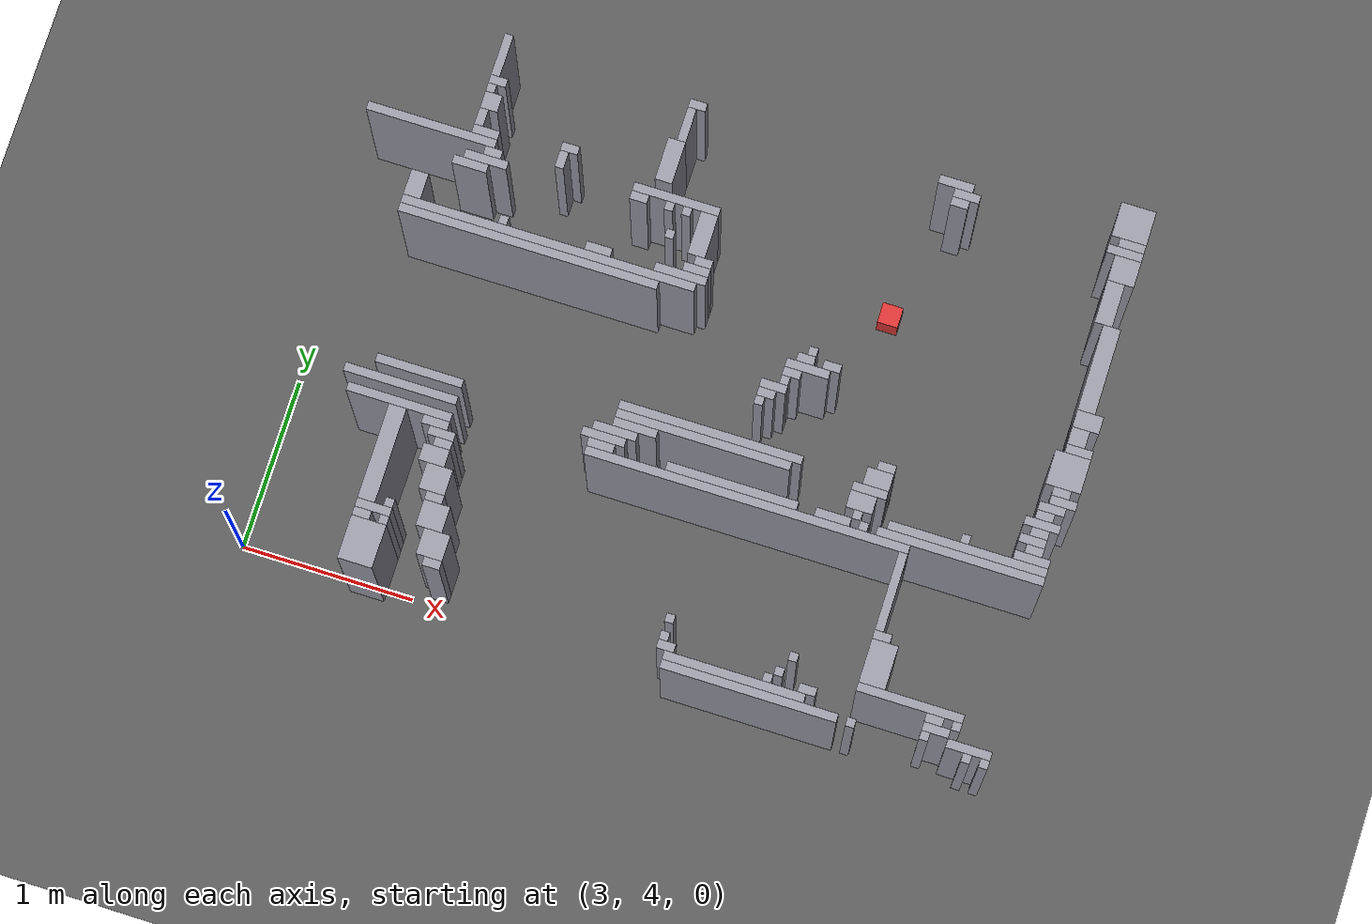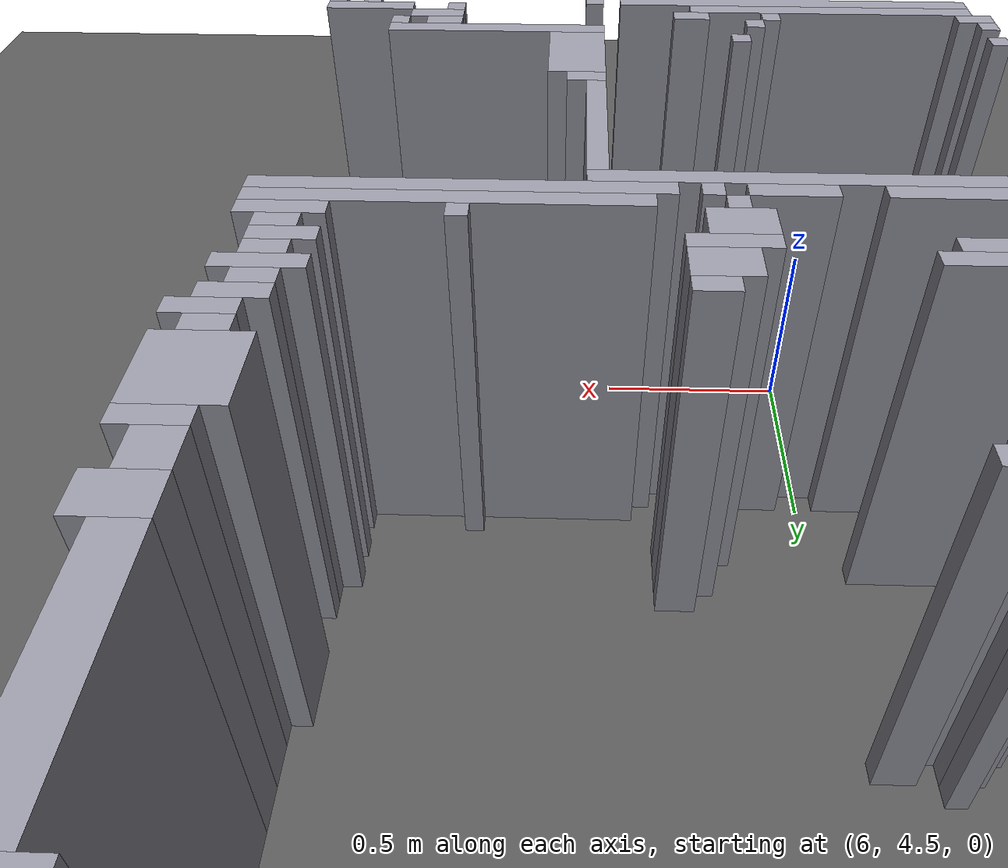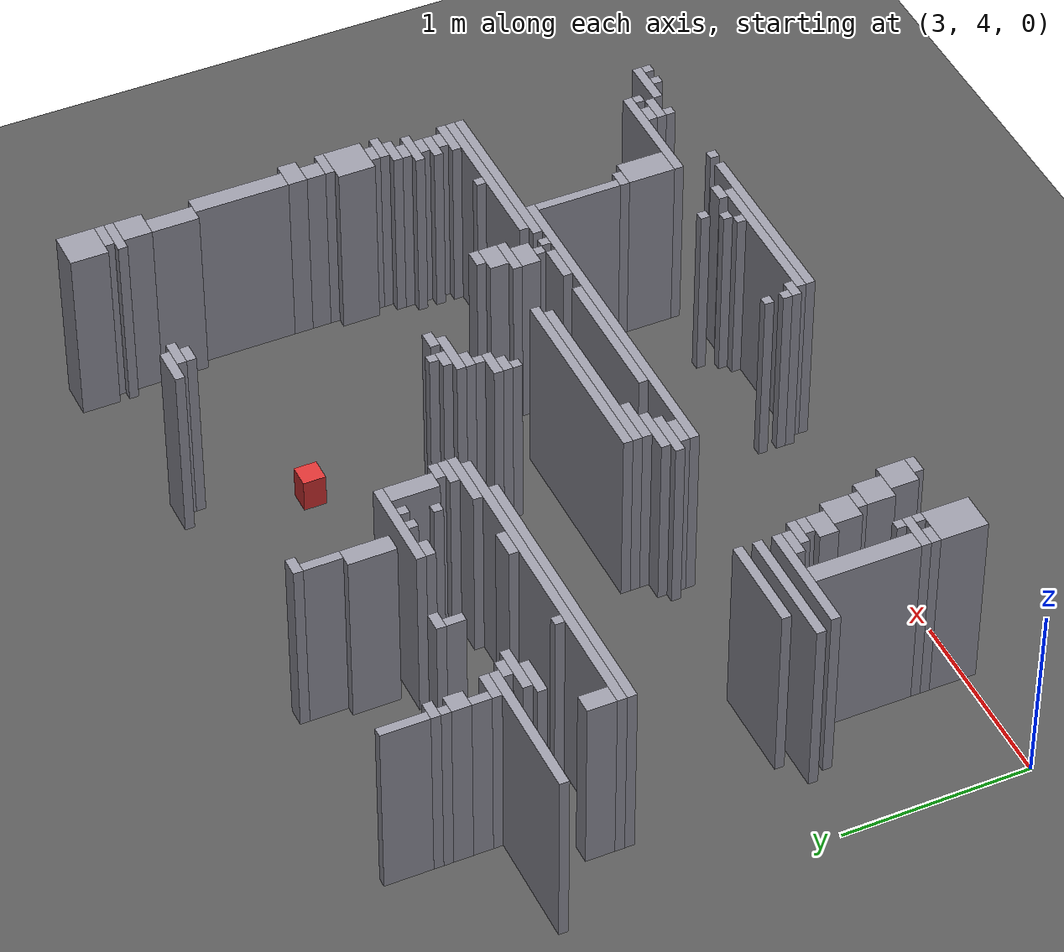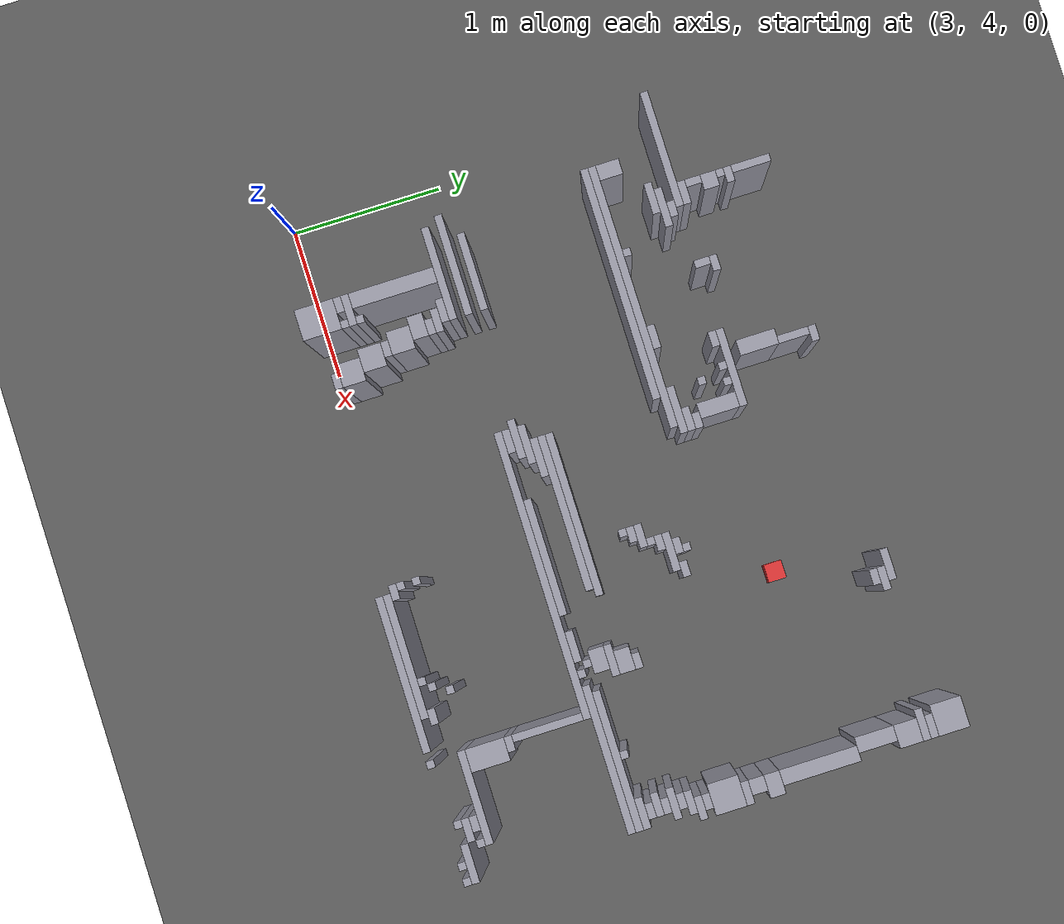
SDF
<sdf version="1.8">
 <world name="dimi">
  <model name="ground">
   <static>true</static>
   <link name="ground_link">
    <collision name="c"><geometry><plane><normal>0 0 1</normal><size>60 60</size></plane></geometry></collision>
    <visual name="v">
     <geometry><plane><normal>0 0 1</normal><size>60 60</size></plane></geometry>
     <material><ambient>0.3 0.3 0.3 1</ambient><diffuse>0.35 0.35 0.35 1</diffuse></material>
    </visual>
   </link>
  </model>
  <model name="walls">
   <static>true</static>
   <link name="wall_251">
    <pose>7.2530 7.0420 0.5000 0 0 0</pose>
    <collision name="c"><geometry><box><size>0.2000 0.2000 1.0000</size></box></geometry></collision>
    <visual name="v">
     <geometry><box><size>0.2000 0.2000 1.0000</size></box></geometry>
     <material><ambient>0.5 0.5 0.55 1</ambient><diffuse>0.6 0.6 0.65 1</diffuse></material>
    </visual>
   </link>
   <link name="wall_256">
    <pose>3.6280 6.9170 0.5000 0 0 0</pose>
    <collision name="c"><geometry><box><size>0.0500 0.2500 1.0000</size></box></geometry></collision>
    <visual name="v">
     <geometry><box><size>0.0500 0.2500 1.0000</size></box></geometry>
     <material><ambient>0.5 0.5 0.55 1</ambient><diffuse>0.6 0.6 0.65 1</diffuse></material>
    </visual>
   </link>
   <link name="wall_258">
    <pose>4.7530 6.9670 0.5000 0 0 0</pose>
    <collision name="c"><geometry><box><size>0.1000 0.0500 1.0000</size></box></geometry></collision>
    <visual name="v">
     <geometry><box><size>0.1000 0.0500 1.0000</size></box></geometry>
     <material><ambient>0.5 0.5 0.55 1</ambient><diffuse>0.6 0.6 0.65 1</diffuse></material>
    </visual>
   </link>
   <link name="wall_259">
    <pose>6.2530 6.9670 0.5000 0 0 0</pose>
    <collision name="c"><geometry><box><size>0.2000 0.0500 1.0000</size></box></geometry></collision>
    <visual name="v">
     <geometry><box><size>0.2000 0.0500 1.0000</size></box></geometry>
     <material><ambient>0.5 0.5 0.55 1</ambient><diffuse>0.6 0.6 0.65 1</diffuse></material>
    </visual>
   </link>
   <link name="wall_262">
    <pose>4.7280 6.8420 0.5000 0 0 0</pose>
    <collision name="c"><geometry><box><size>0.0500 0.2000 1.0000</size></box></geometry></collision>
    <visual name="v">
     <geometry><box><size>0.0500 0.2000 1.0000</size></box></geometry>
     <material><ambient>0.5 0.5 0.55 1</ambient><diffuse>0.6 0.6 0.65 1</diffuse></material>
    </visual>
   </link>
   <link name="wall_263">
    <pose>6.3280 6.9170 0.5000 0 0 0</pose>
    <collision name="c"><geometry><box><size>0.1500 0.0500 1.0000</size></box></geometry></collision>
    <visual name="v">
     <geometry><box><size>0.1500 0.0500 1.0000</size></box></geometry>
     <material><ambient>0.5 0.5 0.55 1</ambient><diffuse>0.6 0.6 0.65 1</diffuse></material>
    </visual>
   </link>
   <link name="wall_264">
    <pose>7.2780 6.9170 0.5000 0 0 0</pose>
    <collision name="c"><geometry><box><size>0.1500 0.0500 1.0000</size></box></geometry></collision>
    <visual name="v">
     <geometry><box><size>0.1500 0.0500 1.0000</size></box></geometry>
     <material><ambient>0.5 0.5 0.55 1</ambient><diffuse>0.6 0.6 0.65 1</diffuse></material>
    </visual>
   </link>
   <link name="wall_267">
    <pose>6.3030 6.8670 0.5000 0 0 0</pose>
    <collision name="c"><geometry><box><size>0.1000 0.0500 1.0000</size></box></geometry></collision>
    <visual name="v">
     <geometry><box><size>0.1000 0.0500 1.0000</size></box></geometry>
     <material><ambient>0.5 0.5 0.55 1</ambient><diffuse>0.6 0.6 0.65 1</diffuse></material>
    </visual>
   </link>
   <link name="wall_268">
    <pose>7.2530 6.8670 0.5000 0 0 0</pose>
    <collision name="c"><geometry><box><size>0.2000 0.0500 1.0000</size></box></geometry></collision>
    <visual name="v">
     <geometry><box><size>0.2000 0.0500 1.0000</size></box></geometry>
     <material><ambient>0.5 0.5 0.55 1</ambient><diffuse>0.6 0.6 0.65 1</diffuse></material>
    </visual>
   </link>
   <link name="wall_270">
    <pose>7.2780 6.7670 0.5000 0 0 0</pose>
    <collision name="c"><geometry><box><size>0.1500 0.1500 1.0000</size></box></geometry></collision>
    <visual name="v">
     <geometry><box><size>0.1500 0.1500 1.0000</size></box></geometry>
     <material><ambient>0.5 0.5 0.55 1</ambient><diffuse>0.6 0.6 0.65 1</diffuse></material>
    </visual>
   </link>
   <link name="wall_271">
    <pose>3.6530 6.7670 0.5000 0 0 0</pose>
    <collision name="c"><geometry><box><size>0.1000 0.0500 1.0000</size></box></geometry></collision>
    <visual name="v">
     <geometry><box><size>0.1000 0.0500 1.0000</size></box></geometry>
     <material><ambient>0.5 0.5 0.55 1</ambient><diffuse>0.6 0.6 0.65 1</diffuse></material>
    </visual>
   </link>
   <link name="wall_273">
    <pose>3.6280 6.7170 0.5000 0 0 0</pose>
    <collision name="c"><geometry><box><size>0.0500 0.0500 1.0000</size></box></geometry></collision>
    <visual name="v">
     <geometry><box><size>0.0500 0.0500 1.0000</size></box></geometry>
     <material><ambient>0.5 0.5 0.55 1</ambient><diffuse>0.6 0.6 0.65 1</diffuse></material>
    </visual>
   </link>
   <link name="wall_274">
    <pose>4.7030 6.6170 0.5000 0 0 0</pose>
    <collision name="c"><geometry><box><size>0.1000 0.2500 1.0000</size></box></geometry></collision>
    <visual name="v">
     <geometry><box><size>0.1000 0.2500 1.0000</size></box></geometry>
     <material><ambient>0.5 0.5 0.55 1</ambient><diffuse>0.6 0.6 0.65 1</diffuse></material>
    </visual>
   </link>
   <link name="wall_277">
    <pose>3.6530 6.6420 0.5000 0 0 0</pose>
    <collision name="c"><geometry><box><size>0.1000 0.1000 1.0000</size></box></geometry></collision>
    <visual name="v">
     <geometry><box><size>0.1000 0.1000 1.0000</size></box></geometry>
     <material><ambient>0.5 0.5 0.55 1</ambient><diffuse>0.6 0.6 0.65 1</diffuse></material>
    </visual>
   </link>
   <link name="wall_278">
    <pose>7.2530 6.5670 0.5000 0 0 0</pose>
    <collision name="c"><geometry><box><size>0.1000 0.2500 1.0000</size></box></geometry></collision>
    <visual name="v">
     <geometry><box><size>0.1000 0.2500 1.0000</size></box></geometry>
     <material><ambient>0.5 0.5 0.55 1</ambient><diffuse>0.6 0.6 0.65 1</diffuse></material>
    </visual>
   </link>
   <link name="wall_288">
    <pose>3.6280 6.5420 0.5000 0 0 0</pose>
    <collision name="c"><geometry><box><size>0.0500 0.1000 1.0000</size></box></geometry></collision>
    <visual name="v">
     <geometry><box><size>0.0500 0.1000 1.0000</size></box></geometry>
     <material><ambient>0.5 0.5 0.55 1</ambient><diffuse>0.6 0.6 0.65 1</diffuse></material>
    </visual>
   </link>
   <link name="wall_294">
    <pose>4.1530 6.5170 0.5000 0 0 0</pose>
    <collision name="c"><geometry><box><size>0.1000 0.0500 1.0000</size></box></geometry></collision>
    <visual name="v">
     <geometry><box><size>0.1000 0.0500 1.0000</size></box></geometry>
     <material><ambient>0.5 0.5 0.55 1</ambient><diffuse>0.6 0.6 0.65 1</diffuse></material>
    </visual>
   </link>
   <link name="wall_300">
    <pose>3.6780 6.4670 0.5000 0 0 0</pose>
    <collision name="c"><geometry><box><size>0.1500 0.0500 1.0000</size></box></geometry></collision>
    <visual name="v">
     <geometry><box><size>0.1500 0.0500 1.0000</size></box></geometry>
     <material><ambient>0.5 0.5 0.55 1</ambient><diffuse>0.6 0.6 0.65 1</diffuse></material>
    </visual>
   </link>
   <link name="wall_301">
    <pose>4.1280 6.4420 0.5000 0 0 0</pose>
    <collision name="c"><geometry><box><size>0.0500 0.1000 1.0000</size></box></geometry></collision>
    <visual name="v">
     <geometry><box><size>0.0500 0.1000 1.0000</size></box></geometry>
     <material><ambient>0.5 0.5 0.55 1</ambient><diffuse>0.6 0.6 0.65 1</diffuse></material>
    </visual>
   </link>
   <link name="wall_306">
    <pose>3.3780 6.4170 0.5000 0 0 0</pose>
    <collision name="c"><geometry><box><size>0.7500 0.0500 1.0000</size></box></geometry></collision>
    <visual name="v">
     <geometry><box><size>0.7500 0.0500 1.0000</size></box></geometry>
     <material><ambient>0.5 0.5 0.55 1</ambient><diffuse>0.6 0.6 0.65 1</diffuse></material>
    </visual>
   </link>
   <link name="wall_307">
    <pose>4.8030 6.4170 0.5000 0 0 0</pose>
    <collision name="c"><geometry><box><size>0.5000 0.0500 1.0000</size></box></geometry></collision>
    <visual name="v">
     <geometry><box><size>0.5000 0.0500 1.0000</size></box></geometry>
     <material><ambient>0.5 0.5 0.55 1</ambient><diffuse>0.6 0.6 0.65 1</diffuse></material>
    </visual>
   </link>
   <link name="wall_308">
    <pose>7.3030 6.1920 0.5000 0 0 0</pose>
    <collision name="c"><geometry><box><size>0.1000 0.5000 1.0000</size></box></geometry></collision>
    <visual name="v">
     <geometry><box><size>0.1000 0.5000 1.0000</size></box></geometry>
     <material><ambient>0.5 0.5 0.55 1</ambient><diffuse>0.6 0.6 0.65 1</diffuse></material>
    </visual>
   </link>
   <link name="wall_314">
    <pose>3.7530 6.3670 0.5000 0 0 0</pose>
    <collision name="c"><geometry><box><size>0.1000 0.0500 1.0000</size></box></geometry></collision>
    <visual name="v">
     <geometry><box><size>0.1000 0.0500 1.0000</size></box></geometry>
     <material><ambient>0.5 0.5 0.55 1</ambient><diffuse>0.6 0.6 0.65 1</diffuse></material>
    </visual>
   </link>
   <link name="wall_315">
    <pose>4.6030 6.3670 0.5000 0 0 0</pose>
    <collision name="c"><geometry><box><size>0.1000 0.0500 1.0000</size></box></geometry></collision>
    <visual name="v">
     <geometry><box><size>0.1000 0.0500 1.0000</size></box></geometry>
     <material><ambient>0.5 0.5 0.55 1</ambient><diffuse>0.6 0.6 0.65 1</diffuse></material>
    </visual>
   </link>
   <link name="wall_316">
    <pose>4.7780 6.3670 0.5000 0 0 0</pose>
    <collision name="c"><geometry><box><size>0.0500 0.0500 1.0000</size></box></geometry></collision>
    <visual name="v">
     <geometry><box><size>0.0500 0.0500 1.0000</size></box></geometry>
     <material><ambient>0.5 0.5 0.55 1</ambient><diffuse>0.6 0.6 0.65 1</diffuse></material>
    </visual>
   </link>
   <link name="wall_317">
    <pose>4.8780 6.3670 0.5000 0 0 0</pose>
    <collision name="c"><geometry><box><size>0.0500 0.0500 1.0000</size></box></geometry></collision>
    <visual name="v">
     <geometry><box><size>0.0500 0.0500 1.0000</size></box></geometry>
     <material><ambient>0.5 0.5 0.55 1</ambient><diffuse>0.6 0.6 0.65 1</diffuse></material>
    </visual>
   </link>
   <link name="wall_318">
    <pose>5.0030 6.2670 0.5000 0 0 0</pose>
    <collision name="c"><geometry><box><size>0.1000 0.2500 1.0000</size></box></geometry></collision>
    <visual name="v">
     <geometry><box><size>0.1000 0.2500 1.0000</size></box></geometry>
     <material><ambient>0.5 0.5 0.55 1</ambient><diffuse>0.6 0.6 0.65 1</diffuse></material>
    </visual>
   </link>
   <link name="wall_325">
    <pose>3.7280 6.3170 0.5000 0 0 0</pose>
    <collision name="c"><geometry><box><size>0.2500 0.0500 1.0000</size></box></geometry></collision>
    <visual name="v">
     <geometry><box><size>0.2500 0.0500 1.0000</size></box></geometry>
     <material><ambient>0.5 0.5 0.55 1</ambient><diffuse>0.6 0.6 0.65 1</diffuse></material>
    </visual>
   </link>
   <link name="wall_329">
    <pose>3.6530 6.2670 0.5000 0 0 0</pose>
    <collision name="c"><geometry><box><size>0.2000 0.0500 1.0000</size></box></geometry></collision>
    <visual name="v">
     <geometry><box><size>0.2000 0.0500 1.0000</size></box></geometry>
     <material><ambient>0.5 0.5 0.55 1</ambient><diffuse>0.6 0.6 0.65 1</diffuse></material>
    </visual>
   </link>
   <link name="wall_332">
    <pose>4.8280 6.2170 0.5000 0 0 0</pose>
    <collision name="c"><geometry><box><size>0.0500 0.0500 1.0000</size></box></geometry></collision>
    <visual name="v">
     <geometry><box><size>0.0500 0.0500 1.0000</size></box></geometry>
     <material><ambient>0.5 0.5 0.55 1</ambient><diffuse>0.6 0.6 0.65 1</diffuse></material>
    </visual>
   </link>
   <link name="wall_334">
    <pose>3.4030 6.0670 0.5000 0 0 0</pose>
    <collision name="c"><geometry><box><size>0.1000 0.1500 1.0000</size></box></geometry></collision>
    <visual name="v">
     <geometry><box><size>0.1000 0.1500 1.0000</size></box></geometry>
     <material><ambient>0.5 0.5 0.55 1</ambient><diffuse>0.6 0.6 0.65 1</diffuse></material>
    </visual>
   </link>
   <link name="wall_335">
    <pose>5.0530 6.1170 0.5000 0 0 0</pose>
    <collision name="c"><geometry><box><size>0.1000 0.0500 1.0000</size></box></geometry></collision>
    <visual name="v">
     <geometry><box><size>0.1000 0.0500 1.0000</size></box></geometry>
     <material><ambient>0.5 0.5 0.55 1</ambient><diffuse>0.6 0.6 0.65 1</diffuse></material>
    </visual>
   </link>
   <link name="wall_336">
    <pose>5.0280 6.0670 0.5000 0 0 0</pose>
    <collision name="c"><geometry><box><size>0.1500 0.0500 1.0000</size></box></geometry></collision>
    <visual name="v">
     <geometry><box><size>0.1500 0.0500 1.0000</size></box></geometry>
     <material><ambient>0.5 0.5 0.55 1</ambient><diffuse>0.6 0.6 0.65 1</diffuse></material>
    </visual>
   </link>
   <link name="wall_337">
    <pose>3.9280 6.0170 0.5000 0 0 0</pose>
    <collision name="c"><geometry><box><size>0.0500 0.0500 1.0000</size></box></geometry></collision>
    <visual name="v">
     <geometry><box><size>0.0500 0.0500 1.0000</size></box></geometry>
     <material><ambient>0.5 0.5 0.55 1</ambient><diffuse>0.6 0.6 0.65 1</diffuse></material>
    </visual>
   </link>
   <link name="wall_338">
    <pose>4.4780 6.0170 0.5000 0 0 0</pose>
    <collision name="c"><geometry><box><size>0.1500 0.0500 1.0000</size></box></geometry></collision>
    <visual name="v">
     <geometry><box><size>0.1500 0.0500 1.0000</size></box></geometry>
     <material><ambient>0.5 0.5 0.55 1</ambient><diffuse>0.6 0.6 0.65 1</diffuse></material>
    </visual>
   </link>
   <link name="wall_339">
    <pose>4.9530 6.0170 0.5000 0 0 0</pose>
    <collision name="c"><geometry><box><size>0.3000 0.0500 1.0000</size></box></geometry></collision>
    <visual name="v">
     <geometry><box><size>0.3000 0.0500 1.0000</size></box></geometry>
     <material><ambient>0.5 0.5 0.55 1</ambient><diffuse>0.6 0.6 0.65 1</diffuse></material>
    </visual>
   </link>
   <link name="wall_340">
    <pose>4.2030 5.9670 0.5000 0 0 0</pose>
    <collision name="c"><geometry><box><size>1.7000 0.0500 1.0000</size></box></geometry></collision>
    <visual name="v">
     <geometry><box><size>1.7000 0.0500 1.0000</size></box></geometry>
     <material><ambient>0.5 0.5 0.55 1</ambient><diffuse>0.6 0.6 0.65 1</diffuse></material>
    </visual>
   </link>
   <link name="wall_341">
    <pose>4.1030 5.9170 0.5000 0 0 0</pose>
    <collision name="c"><geometry><box><size>1.5000 0.0500 1.0000</size></box></geometry></collision>
    <visual name="v">
     <geometry><box><size>1.5000 0.0500 1.0000</size></box></geometry>
     <material><ambient>0.5 0.5 0.55 1</ambient><diffuse>0.6 0.6 0.65 1</diffuse></material>
    </visual>
   </link>
   <link name="wall_342">
    <pose>7.3280 5.8920 0.5000 0 0 0</pose>
    <collision name="c"><geometry><box><size>0.1500 0.1000 1.0000</size></box></geometry></collision>
    <visual name="v">
     <geometry><box><size>0.1500 0.1000 1.0000</size></box></geometry>
     <material><ambient>0.5 0.5 0.55 1</ambient><diffuse>0.6 0.6 0.65 1</diffuse></material>
    </visual>
   </link>
   <link name="wall_344">
    <pose>5.7780 5.8170 0.5000 0 0 0</pose>
    <collision name="c"><geometry><box><size>0.0500 0.0500 1.0000</size></box></geometry></collision>
    <visual name="v">
     <geometry><box><size>0.0500 0.0500 1.0000</size></box></geometry>
     <material><ambient>0.5 0.5 0.55 1</ambient><diffuse>0.6 0.6 0.65 1</diffuse></material>
    </visual>
   </link>
   <link name="wall_345">
    <pose>7.3030 5.7920 0.5000 0 0 0</pose>
    <collision name="c"><geometry><box><size>0.1000 0.1000 1.0000</size></box></geometry></collision>
    <visual name="v">
     <geometry><box><size>0.1000 0.1000 1.0000</size></box></geometry>
     <material><ambient>0.5 0.5 0.55 1</ambient><diffuse>0.6 0.6 0.65 1</diffuse></material>
    </visual>
   </link>
   <link name="wall_346">
    <pose>5.7530 5.7670 0.5000 0 0 0</pose>
    <collision name="c"><geometry><box><size>0.1000 0.0500 1.0000</size></box></geometry></collision>
    <visual name="v">
     <geometry><box><size>0.1000 0.0500 1.0000</size></box></geometry>
     <material><ambient>0.5 0.5 0.55 1</ambient><diffuse>0.6 0.6 0.65 1</diffuse></material>
    </visual>
   </link>
   <link name="wall_347">
    <pose>5.9030 5.7670 0.5000 0 0 0</pose>
    <collision name="c"><geometry><box><size>0.1000 0.0500 1.0000</size></box></geometry></collision>
    <visual name="v">
     <geometry><box><size>0.1000 0.0500 1.0000</size></box></geometry>
     <material><ambient>0.5 0.5 0.55 1</ambient><diffuse>0.6 0.6 0.65 1</diffuse></material>
    </visual>
   </link>
   <link name="wall_348">
    <pose>5.7780 5.7170 0.5000 0 0 0</pose>
    <collision name="c"><geometry><box><size>0.2500 0.0500 1.0000</size></box></geometry></collision>
    <visual name="v">
     <geometry><box><size>0.2500 0.0500 1.0000</size></box></geometry>
     <material><ambient>0.5 0.5 0.55 1</ambient><diffuse>0.6 0.6 0.65 1</diffuse></material>
    </visual>
   </link>
   <link name="wall_349">
    <pose>7.3280 5.7170 0.5000 0 0 0</pose>
    <collision name="c"><geometry><box><size>0.1500 0.0500 1.0000</size></box></geometry></collision>
    <visual name="v">
     <geometry><box><size>0.1500 0.0500 1.0000</size></box></geometry>
     <material><ambient>0.5 0.5 0.55 1</ambient><diffuse>0.6 0.6 0.65 1</diffuse></material>
    </visual>
   </link>
   <link name="wall_350">
    <pose>5.7030 5.6670 0.5000 0 0 0</pose>
    <collision name="c"><geometry><box><size>0.1000 0.0500 1.0000</size></box></geometry></collision>
    <visual name="v">
     <geometry><box><size>0.1000 0.0500 1.0000</size></box></geometry>
     <material><ambient>0.5 0.5 0.55 1</ambient><diffuse>0.6 0.6 0.65 1</diffuse></material>
    </visual>
   </link>
   <link name="wall_351">
    <pose>7.3030 5.5920 0.5000 0 0 0</pose>
    <collision name="c"><geometry><box><size>0.2000 0.2000 1.0000</size></box></geometry></collision>
    <visual name="v">
     <geometry><box><size>0.2000 0.2000 1.0000</size></box></geometry>
     <material><ambient>0.5 0.5 0.55 1</ambient><diffuse>0.6 0.6 0.65 1</diffuse></material>
    </visual>
   </link>
   <link name="wall_352">
    <pose>5.6780 5.6170 0.5000 0 0 0</pose>
    <collision name="c"><geometry><box><size>0.0500 0.0500 1.0000</size></box></geometry></collision>
    <visual name="v">
     <geometry><box><size>0.0500 0.0500 1.0000</size></box></geometry>
     <material><ambient>0.5 0.5 0.55 1</ambient><diffuse>0.6 0.6 0.65 1</diffuse></material>
    </visual>
   </link>
   <link name="wall_353">
    <pose>5.6280 5.5670 0.5000 0 0 0</pose>
    <collision name="c"><geometry><box><size>0.1500 0.0500 1.0000</size></box></geometry></collision>
    <visual name="v">
     <geometry><box><size>0.1500 0.0500 1.0000</size></box></geometry>
     <material><ambient>0.5 0.5 0.55 1</ambient><diffuse>0.6 0.6 0.65 1</diffuse></material>
    </visual>
   </link>
   <link name="wall_354">
    <pose>5.6030 5.5170 0.5000 0 0 0</pose>
    <collision name="c"><geometry><box><size>0.1000 0.0500 1.0000</size></box></geometry></collision>
    <visual name="v">
     <geometry><box><size>0.1000 0.0500 1.0000</size></box></geometry>
     <material><ambient>0.5 0.5 0.55 1</ambient><diffuse>0.6 0.6 0.65 1</diffuse></material>
    </visual>
   </link>
   <link name="wall_355">
    <pose>5.5780 5.4670 0.5000 0 0 0</pose>
    <collision name="c"><geometry><box><size>0.0500 0.0500 1.0000</size></box></geometry></collision>
    <visual name="v">
     <geometry><box><size>0.0500 0.0500 1.0000</size></box></geometry>
     <material><ambient>0.5 0.5 0.55 1</ambient><diffuse>0.6 0.6 0.65 1</diffuse></material>
    </visual>
   </link>
   <link name="wall_356">
    <pose>7.3030 5.4670 0.5000 0 0 0</pose>
    <collision name="c"><geometry><box><size>0.1000 0.0500 1.0000</size></box></geometry></collision>
    <visual name="v">
     <geometry><box><size>0.1000 0.0500 1.0000</size></box></geometry>
     <material><ambient>0.5 0.5 0.55 1</ambient><diffuse>0.6 0.6 0.65 1</diffuse></material>
    </visual>
   </link>
   <link name="wall_357">
    <pose>7.3280 5.4170 0.5000 0 0 0</pose>
    <collision name="c"><geometry><box><size>0.1500 0.0500 1.0000</size></box></geometry></collision>
    <visual name="v">
     <geometry><box><size>0.1500 0.0500 1.0000</size></box></geometry>
     <material><ambient>0.5 0.5 0.55 1</ambient><diffuse>0.6 0.6 0.65 1</diffuse></material>
    </visual>
   </link>
   <link name="wall_358">
    <pose>7.2780 5.3670 0.5000 0 0 0</pose>
    <collision name="c"><geometry><box><size>0.1500 0.0500 1.0000</size></box></geometry></collision>
    <visual name="v">
     <geometry><box><size>0.1500 0.0500 1.0000</size></box></geometry>
     <material><ambient>0.5 0.5 0.55 1</ambient><diffuse>0.6 0.6 0.65 1</diffuse></material>
    </visual>
   </link>
   <link name="wall_359">
    <pose>6.3530 5.3170 0.5000 0 0 0</pose>
    <collision name="c"><geometry><box><size>0.1000 0.0500 1.0000</size></box></geometry></collision>
    <visual name="v">
     <geometry><box><size>0.1000 0.0500 1.0000</size></box></geometry>
     <material><ambient>0.5 0.5 0.55 1</ambient><diffuse>0.6 0.6 0.65 1</diffuse></material>
    </visual>
   </link>
   <link name="wall_360">
    <pose>7.2530 5.3170 0.5000 0 0 0</pose>
    <collision name="c"><geometry><box><size>0.1000 0.0500 1.0000</size></box></geometry></collision>
    <visual name="v">
     <geometry><box><size>0.1000 0.0500 1.0000</size></box></geometry>
     <material><ambient>0.5 0.5 0.55 1</ambient><diffuse>0.6 0.6 0.65 1</diffuse></material>
    </visual>
   </link>
   <link name="wall_361">
    <pose>6.3280 5.2420 0.5000 0 0 0</pose>
    <collision name="c"><geometry><box><size>0.1500 0.1000 1.0000</size></box></geometry></collision>
    <visual name="v">
     <geometry><box><size>0.1500 0.1000 1.0000</size></box></geometry>
     <material><ambient>0.5 0.5 0.55 1</ambient><diffuse>0.6 0.6 0.65 1</diffuse></material>
    </visual>
   </link>
   <link name="wall_362">
    <pose>7.2530 5.2670 0.5000 0 0 0</pose>
    <collision name="c"><geometry><box><size>0.2000 0.0500 1.0000</size></box></geometry></collision>
    <visual name="v">
     <geometry><box><size>0.2000 0.0500 1.0000</size></box></geometry>
     <material><ambient>0.5 0.5 0.55 1</ambient><diffuse>0.6 0.6 0.65 1</diffuse></material>
    </visual>
   </link>
   <link name="wall_366">
    <pose>5.3780 5.2170 0.5000 0 0 0</pose>
    <collision name="c"><geometry><box><size>1.0500 0.0500 1.0000</size></box></geometry></collision>
    <visual name="v">
     <geometry><box><size>1.0500 0.0500 1.0000</size></box></geometry>
     <material><ambient>0.5 0.5 0.55 1</ambient><diffuse>0.6 0.6 0.65 1</diffuse></material>
    </visual>
   </link>
   <link name="wall_367">
    <pose>7.2530 5.2170 0.5000 0 0 0</pose>
    <collision name="c"><geometry><box><size>0.1000 0.0500 1.0000</size></box></geometry></collision>
    <visual name="v">
     <geometry><box><size>0.1000 0.0500 1.0000</size></box></geometry>
     <material><ambient>0.5 0.5 0.55 1</ambient><diffuse>0.6 0.6 0.65 1</diffuse></material>
    </visual>
   </link>
   <link name="wall_369">
    <pose>5.3530 5.1670 0.5000 0 0 0</pose>
    <collision name="c"><geometry><box><size>1.0000 0.0500 1.0000</size></box></geometry></collision>
    <visual name="v">
     <geometry><box><size>1.0000 0.0500 1.0000</size></box></geometry>
     <material><ambient>0.5 0.5 0.55 1</ambient><diffuse>0.6 0.6 0.65 1</diffuse></material>
    </visual>
   </link>
   <link name="wall_370">
    <pose>6.3030 5.1670 0.5000 0 0 0</pose>
    <collision name="c"><geometry><box><size>0.2000 0.0500 1.0000</size></box></geometry></collision>
    <visual name="v">
     <geometry><box><size>0.2000 0.0500 1.0000</size></box></geometry>
     <material><ambient>0.5 0.5 0.55 1</ambient><diffuse>0.6 0.6 0.65 1</diffuse></material>
    </visual>
   </link>
   <link name="wall_371">
    <pose>7.2280 5.1670 0.5000 0 0 0</pose>
    <collision name="c"><geometry><box><size>0.1500 0.0500 1.0000</size></box></geometry></collision>
    <visual name="v">
     <geometry><box><size>0.1500 0.0500 1.0000</size></box></geometry>
     <material><ambient>0.5 0.5 0.55 1</ambient><diffuse>0.6 0.6 0.65 1</diffuse></material>
    </visual>
   </link>
   <link name="wall_372">
    <pose>4.9780 5.1170 0.5000 0 0 0</pose>
    <collision name="c"><geometry><box><size>0.2500 0.0500 1.0000</size></box></geometry></collision>
    <visual name="v">
     <geometry><box><size>0.2500 0.0500 1.0000</size></box></geometry>
     <material><ambient>0.5 0.5 0.55 1</ambient><diffuse>0.6 0.6 0.65 1</diffuse></material>
    </visual>
   </link>
   <link name="wall_373">
    <pose>6.2780 5.0920 0.5000 0 0 0</pose>
    <collision name="c"><geometry><box><size>0.1500 0.1000 1.0000</size></box></geometry></collision>
    <visual name="v">
     <geometry><box><size>0.1500 0.1000 1.0000</size></box></geometry>
     <material><ambient>0.5 0.5 0.55 1</ambient><diffuse>0.6 0.6 0.65 1</diffuse></material>
    </visual>
   </link>
   <link name="wall_374">
    <pose>7.2530 5.1170 0.5000 0 0 0</pose>
    <collision name="c"><geometry><box><size>0.1000 0.0500 1.0000</size></box></geometry></collision>
    <visual name="v">
     <geometry><box><size>0.1000 0.0500 1.0000</size></box></geometry>
     <material><ambient>0.5 0.5 0.55 1</ambient><diffuse>0.6 0.6 0.65 1</diffuse></material>
    </visual>
   </link>
   <link name="wall_375">
    <pose>3.7530 5.0670 0.5000 0 0 0</pose>
    <collision name="c"><geometry><box><size>0.5000 0.0500 1.0000</size></box></geometry></collision>
    <visual name="v">
     <geometry><box><size>0.5000 0.0500 1.0000</size></box></geometry>
     <material><ambient>0.5 0.5 0.55 1</ambient><diffuse>0.6 0.6 0.65 1</diffuse></material>
    </visual>
   </link>
   <link name="wall_376">
    <pose>4.8780 5.0670 0.5000 0 0 0</pose>
    <collision name="c"><geometry><box><size>0.2500 0.0500 1.0000</size></box></geometry></collision>
    <visual name="v">
     <geometry><box><size>0.2500 0.0500 1.0000</size></box></geometry>
     <material><ambient>0.5 0.5 0.55 1</ambient><diffuse>0.6 0.6 0.65 1</diffuse></material>
    </visual>
   </link>
   <link name="wall_377">
    <pose>6.8780 5.0670 0.5000 0 0 0</pose>
    <collision name="c"><geometry><box><size>0.0500 0.0500 1.0000</size></box></geometry></collision>
    <visual name="v">
     <geometry><box><size>0.0500 0.0500 1.0000</size></box></geometry>
     <material><ambient>0.5 0.5 0.55 1</ambient><diffuse>0.6 0.6 0.65 1</diffuse></material>
    </visual>
   </link>
   <link name="wall_378">
    <pose>7.2530 5.0670 0.5000 0 0 0</pose>
    <collision name="c"><geometry><box><size>0.2000 0.0500 1.0000</size></box></geometry></collision>
    <visual name="v">
     <geometry><box><size>0.2000 0.0500 1.0000</size></box></geometry>
     <material><ambient>0.5 0.5 0.55 1</ambient><diffuse>0.6 0.6 0.65 1</diffuse></material>
    </visual>
   </link>
   <link name="wall_381">
    <pose>4.8280 5.0170 0.5000 0 0 0</pose>
    <collision name="c"><geometry><box><size>0.2500 0.0500 1.0000</size></box></geometry></collision>
    <visual name="v">
     <geometry><box><size>0.2500 0.0500 1.0000</size></box></geometry>
     <material><ambient>0.5 0.5 0.55 1</ambient><diffuse>0.6 0.6 0.65 1</diffuse></material>
    </visual>
   </link>
   <link name="wall_382">
    <pose>6.2780 5.0170 0.5000 0 0 0</pose>
    <collision name="c"><geometry><box><size>0.0500 0.0500 1.0000</size></box></geometry></collision>
    <visual name="v">
     <geometry><box><size>0.0500 0.0500 1.0000</size></box></geometry>
     <material><ambient>0.5 0.5 0.55 1</ambient><diffuse>0.6 0.6 0.65 1</diffuse></material>
    </visual>
   </link>
   <link name="wall_383">
    <pose>6.9030 5.0170 0.5000 0 0 0</pose>
    <collision name="c"><geometry><box><size>0.9000 0.0500 1.0000</size></box></geometry></collision>
    <visual name="v">
     <geometry><box><size>0.9000 0.0500 1.0000</size></box></geometry>
     <material><ambient>0.5 0.5 0.55 1</ambient><diffuse>0.6 0.6 0.65 1</diffuse></material>
    </visual>
   </link>
   <link name="wall_389">
    <pose>3.6780 4.9670 0.5000 0 0 0</pose>
    <collision name="c"><geometry><box><size>0.6500 0.0500 1.0000</size></box></geometry></collision>
    <visual name="v">
     <geometry><box><size>0.6500 0.0500 1.0000</size></box></geometry>
     <material><ambient>0.5 0.5 0.55 1</ambient><diffuse>0.6 0.6 0.65 1</diffuse></material>
    </visual>
   </link>
   <link name="wall_390">
    <pose>4.8280 4.9670 0.5000 0 0 0</pose>
    <collision name="c"><geometry><box><size>0.1500 0.0500 1.0000</size></box></geometry></collision>
    <visual name="v">
     <geometry><box><size>0.1500 0.0500 1.0000</size></box></geometry>
     <material><ambient>0.5 0.5 0.55 1</ambient><diffuse>0.6 0.6 0.65 1</diffuse></material>
    </visual>
   </link>
   <link name="wall_391">
    <pose>5.5780 4.9670 0.5000 0 0 0</pose>
    <collision name="c"><geometry><box><size>0.7500 0.0500 1.0000</size></box></geometry></collision>
    <visual name="v">
     <geometry><box><size>0.7500 0.0500 1.0000</size></box></geometry>
     <material><ambient>0.5 0.5 0.55 1</ambient><diffuse>0.6 0.6 0.65 1</diffuse></material>
    </visual>
   </link>
   <link name="wall_392">
    <pose>6.1530 4.9670 0.5000 0 0 0</pose>
    <collision name="c"><geometry><box><size>0.2000 0.0500 1.0000</size></box></geometry></collision>
    <visual name="v">
     <geometry><box><size>0.2000 0.0500 1.0000</size></box></geometry>
     <material><ambient>0.5 0.5 0.55 1</ambient><diffuse>0.6 0.6 0.65 1</diffuse></material>
    </visual>
   </link>
   <link name="wall_393">
    <pose>6.3280 4.9670 0.5000 0 0 0</pose>
    <collision name="c"><geometry><box><size>0.0500 0.0500 1.0000</size></box></geometry></collision>
    <visual name="v">
     <geometry><box><size>0.0500 0.0500 1.0000</size></box></geometry>
     <material><ambient>0.5 0.5 0.55 1</ambient><diffuse>0.6 0.6 0.65 1</diffuse></material>
    </visual>
   </link>
   <link name="wall_394">
    <pose>6.8780 4.9670 0.5000 0 0 0</pose>
    <collision name="c"><geometry><box><size>0.9500 0.0500 1.0000</size></box></geometry></collision>
    <visual name="v">
     <geometry><box><size>0.9500 0.0500 1.0000</size></box></geometry>
     <material><ambient>0.5 0.5 0.55 1</ambient><diffuse>0.6 0.6 0.65 1</diffuse></material>
    </visual>
   </link>
   <link name="wall_400">
    <pose>5.6780 4.9170 0.5000 0 0 0</pose>
    <collision name="c"><geometry><box><size>1.8500 0.0500 1.0000</size></box></geometry></collision>
    <visual name="v">
     <geometry><box><size>1.8500 0.0500 1.0000</size></box></geometry>
     <material><ambient>0.5 0.5 0.55 1</ambient><diffuse>0.6 0.6 0.65 1</diffuse></material>
    </visual>
   </link>
   <link name="wall_406">
    <pose>3.7030 4.8670 0.5000 0 0 0</pose>
    <collision name="c"><geometry><box><size>0.6000 0.0500 1.0000</size></box></geometry></collision>
    <visual name="v">
     <geometry><box><size>0.6000 0.0500 1.0000</size></box></geometry>
     <material><ambient>0.5 0.5 0.55 1</ambient><diffuse>0.6 0.6 0.65 1</diffuse></material>
    </visual>
   </link>
   <link name="wall_407">
    <pose>6.5780 4.6670 0.5000 0 0 0</pose>
    <collision name="c"><geometry><box><size>0.0500 0.4500 1.0000</size></box></geometry></collision>
    <visual name="v">
     <geometry><box><size>0.0500 0.4500 1.0000</size></box></geometry>
     <material><ambient>0.5 0.5 0.55 1</ambient><diffuse>0.6 0.6 0.65 1</diffuse></material>
    </visual>
   </link>
   <link name="wall_412">
    <pose>3.7030 4.5670 0.5000 0 0 0</pose>
    <collision name="c"><geometry><box><size>0.1000 0.5500 1.0000</size></box></geometry></collision>
    <visual name="v">
     <geometry><box><size>0.1000 0.5500 1.0000</size></box></geometry>
     <material><ambient>0.5 0.5 0.55 1</ambient><diffuse>0.6 0.6 0.65 1</diffuse></material>
    </visual>
   </link>
   <link name="wall_413">
    <pose>3.9280 4.8170 0.5000 0 0 0</pose>
    <collision name="c"><geometry><box><size>0.1500 0.0500 1.0000</size></box></geometry></collision>
    <visual name="v">
     <geometry><box><size>0.1500 0.0500 1.0000</size></box></geometry>
     <material><ambient>0.5 0.5 0.55 1</ambient><diffuse>0.6 0.6 0.65 1</diffuse></material>
    </visual>
   </link>
   <link name="wall_418">
    <pose>3.9780 4.7670 0.5000 0 0 0</pose>
    <collision name="c"><geometry><box><size>0.1500 0.0500 1.0000</size></box></geometry></collision>
    <visual name="v">
     <geometry><box><size>0.1500 0.0500 1.0000</size></box></geometry>
     <material><ambient>0.5 0.5 0.55 1</ambient><diffuse>0.6 0.6 0.65 1</diffuse></material>
    </visual>
   </link>
   <link name="wall_420">
    <pose>4.0030 4.7170 0.5000 0 0 0</pose>
    <collision name="c"><geometry><box><size>0.1000 0.0500 1.0000</size></box></geometry></collision>
    <visual name="v">
     <geometry><box><size>0.1000 0.0500 1.0000</size></box></geometry>
     <material><ambient>0.5 0.5 0.55 1</ambient><diffuse>0.6 0.6 0.65 1</diffuse></material>
    </visual>
   </link>
   <link name="wall_424">
    <pose>3.9780 4.6420 0.5000 0 0 0</pose>
    <collision name="c"><geometry><box><size>0.1500 0.1000 1.0000</size></box></geometry></collision>
    <visual name="v">
     <geometry><box><size>0.1500 0.1000 1.0000</size></box></geometry>
     <material><ambient>0.5 0.5 0.55 1</ambient><diffuse>0.6 0.6 0.65 1</diffuse></material>
    </visual>
   </link>
   <link name="wall_429">
    <pose>4.0280 4.5170 0.5000 0 0 0</pose>
    <collision name="c"><geometry><box><size>0.1500 0.1500 1.0000</size></box></geometry></collision>
    <visual name="v">
     <geometry><box><size>0.1500 0.1500 1.0000</size></box></geometry>
     <material><ambient>0.5 0.5 0.55 1</ambient><diffuse>0.6 0.6 0.65 1</diffuse></material>
    </visual>
   </link>
   <link name="wall_431">
    <pose>4.0530 4.4170 0.5000 0 0 0</pose>
    <collision name="c"><geometry><box><size>0.1000 0.0500 1.0000</size></box></geometry></collision>
    <visual name="v">
     <geometry><box><size>0.1000 0.0500 1.0000</size></box></geometry>
     <material><ambient>0.5 0.5 0.55 1</ambient><diffuse>0.6 0.6 0.65 1</diffuse></material>
    </visual>
   </link>
   <link name="wall_432">
    <pose>6.6030 4.4170 0.5000 0 0 0</pose>
    <collision name="c"><geometry><box><size>0.1000 0.0500 1.0000</size></box></geometry></collision>
    <visual name="v">
     <geometry><box><size>0.1000 0.0500 1.0000</size></box></geometry>
     <material><ambient>0.5 0.5 0.55 1</ambient><diffuse>0.6 0.6 0.65 1</diffuse></material>
    </visual>
   </link>
   <link name="wall_434">
    <pose>4.0780 4.3170 0.5000 0 0 0</pose>
    <collision name="c"><geometry><box><size>0.1500 0.1500 1.0000</size></box></geometry></collision>
    <visual name="v">
     <geometry><box><size>0.1500 0.1500 1.0000</size></box></geometry>
     <material><ambient>0.5 0.5 0.55 1</ambient><diffuse>0.6 0.6 0.65 1</diffuse></material>
    </visual>
   </link>
   <link name="wall_435">
    <pose>6.6280 4.2670 0.5000 0 0 0</pose>
    <collision name="c"><geometry><box><size>0.1500 0.2500 1.0000</size></box></geometry></collision>
    <visual name="v">
     <geometry><box><size>0.1500 0.2500 1.0000</size></box></geometry>
     <material><ambient>0.5 0.5 0.55 1</ambient><diffuse>0.6 0.6 0.65 1</diffuse></material>
    </visual>
   </link>
   <link name="wall_438">
    <pose>3.8280 4.3170 0.5000 0 0 0</pose>
    <collision name="c"><geometry><box><size>0.0500 0.0500 1.0000</size></box></geometry></collision>
    <visual name="v">
     <geometry><box><size>0.0500 0.0500 1.0000</size></box></geometry>
     <material><ambient>0.5 0.5 0.55 1</ambient><diffuse>0.6 0.6 0.65 1</diffuse></material>
    </visual>
   </link>
   <link name="wall_440">
    <pose>3.7530 4.2670 0.5000 0 0 0</pose>
    <collision name="c"><geometry><box><size>0.2000 0.0500 1.0000</size></box></geometry></collision>
    <visual name="v">
     <geometry><box><size>0.2000 0.0500 1.0000</size></box></geometry>
     <material><ambient>0.5 0.5 0.55 1</ambient><diffuse>0.6 0.6 0.65 1</diffuse></material>
    </visual>
   </link>
   <link name="wall_443">
    <pose>3.7030 4.2170 0.5000 0 0 0</pose>
    <collision name="c"><geometry><box><size>0.1000 0.0500 1.0000</size></box></geometry></collision>
    <visual name="v">
     <geometry><box><size>0.1000 0.0500 1.0000</size></box></geometry>
     <material><ambient>0.5 0.5 0.55 1</ambient><diffuse>0.6 0.6 0.65 1</diffuse></material>
    </visual>
   </link>
   <link name="wall_444">
    <pose>3.8280 4.2170 0.5000 0 0 0</pose>
    <collision name="c"><geometry><box><size>0.0500 0.0500 1.0000</size></box></geometry></collision>
    <visual name="v">
     <geometry><box><size>0.0500 0.0500 1.0000</size></box></geometry>
     <material><ambient>0.5 0.5 0.55 1</ambient><diffuse>0.6 0.6 0.65 1</diffuse></material>
    </visual>
   </link>
   <link name="wall_445">
    <pose>4.1280 4.1670 0.5000 0 0 0</pose>
    <collision name="c"><geometry><box><size>0.1500 0.1500 1.0000</size></box></geometry></collision>
    <visual name="v">
     <geometry><box><size>0.1500 0.1500 1.0000</size></box></geometry>
     <material><ambient>0.5 0.5 0.55 1</ambient><diffuse>0.6 0.6 0.65 1</diffuse></material>
    </visual>
   </link>
   <link name="wall_447">
    <pose>3.7530 4.0670 0.5000 0 0 0</pose>
    <collision name="c"><geometry><box><size>0.2000 0.2500 1.0000</size></box></geometry></collision>
    <visual name="v">
     <geometry><box><size>0.2000 0.2500 1.0000</size></box></geometry>
     <material><ambient>0.5 0.5 0.55 1</ambient><diffuse>0.6 0.6 0.65 1</diffuse></material>
    </visual>
   </link>
   <link name="wall_448">
    <pose>5.4780 4.1670 0.5000 0 0 0</pose>
    <collision name="c"><geometry><box><size>0.0500 0.0500 1.0000</size></box></geometry></collision>
    <visual name="v">
     <geometry><box><size>0.0500 0.0500 1.0000</size></box></geometry>
     <material><ambient>0.5 0.5 0.55 1</ambient><diffuse>0.6 0.6 0.65 1</diffuse></material>
    </visual>
   </link>
   <link name="wall_449">
    <pose>6.1780 4.1670 0.5000 0 0 0</pose>
    <collision name="c"><geometry><box><size>0.0500 0.0500 1.0000</size></box></geometry></collision>
    <visual name="v">
     <geometry><box><size>0.0500 0.0500 1.0000</size></box></geometry>
     <material><ambient>0.5 0.5 0.55 1</ambient><diffuse>0.6 0.6 0.65 1</diffuse></material>
    </visual>
   </link>
   <link name="wall_450">
    <pose>6.8530 4.1170 0.5000 0 0 0</pose>
    <collision name="c"><geometry><box><size>0.6000 0.0500 1.0000</size></box></geometry></collision>
    <visual name="v">
     <geometry><box><size>0.6000 0.0500 1.0000</size></box></geometry>
     <material><ambient>0.5 0.5 0.55 1</ambient><diffuse>0.6 0.6 0.65 1</diffuse></material>
    </visual>
   </link>
   <link name="wall_454">
    <pose>4.1530 4.0670 0.5000 0 0 0</pose>
    <collision name="c"><geometry><box><size>0.1000 0.0500 1.0000</size></box></geometry></collision>
    <visual name="v">
     <geometry><box><size>0.1000 0.0500 1.0000</size></box></geometry>
     <material><ambient>0.5 0.5 0.55 1</ambient><diffuse>0.6 0.6 0.65 1</diffuse></material>
    </visual>
   </link>
   <link name="wall_455">
    <pose>5.4780 4.0670 0.5000 0 0 0</pose>
    <collision name="c"><geometry><box><size>0.0500 0.0500 1.0000</size></box></geometry></collision>
    <visual name="v">
     <geometry><box><size>0.0500 0.0500 1.0000</size></box></geometry>
     <material><ambient>0.5 0.5 0.55 1</ambient><diffuse>0.6 0.6 0.65 1</diffuse></material>
    </visual>
   </link>
   <link name="wall_456">
    <pose>6.1280 4.0670 0.5000 0 0 0</pose>
    <collision name="c"><geometry><box><size>0.0500 0.0500 1.0000</size></box></geometry></collision>
    <visual name="v">
     <geometry><box><size>0.0500 0.0500 1.0000</size></box></geometry>
     <material><ambient>0.5 0.5 0.55 1</ambient><diffuse>0.6 0.6 0.65 1</diffuse></material>
    </visual>
   </link>
   <link name="wall_457">
    <pose>7.0030 4.0670 0.5000 0 0 0</pose>
    <collision name="c"><geometry><box><size>0.1000 0.0500 1.0000</size></box></geometry></collision>
    <visual name="v">
     <geometry><box><size>0.1000 0.0500 1.0000</size></box></geometry>
     <material><ambient>0.5 0.5 0.55 1</ambient><diffuse>0.6 0.6 0.65 1</diffuse></material>
    </visual>
   </link>
   <link name="wall_458">
    <pose>7.1280 4.0670 0.5000 0 0 0</pose>
    <collision name="c"><geometry><box><size>0.0500 0.0500 1.0000</size></box></geometry></collision>
    <visual name="v">
     <geometry><box><size>0.0500 0.0500 1.0000</size></box></geometry>
     <material><ambient>0.5 0.5 0.55 1</ambient><diffuse>0.6 0.6 0.65 1</diffuse></material>
    </visual>
   </link>
   <link name="wall_460">
    <pose>5.5030 4.0170 0.5000 0 0 0</pose>
    <collision name="c"><geometry><box><size>0.1000 0.0500 1.0000</size></box></geometry></collision>
    <visual name="v">
     <geometry><box><size>0.1000 0.0500 1.0000</size></box></geometry>
     <material><ambient>0.5 0.5 0.55 1</ambient><diffuse>0.6 0.6 0.65 1</diffuse></material>
    </visual>
   </link>
   <link name="wall_461">
    <pose>6.0780 4.0170 0.5000 0 0 0</pose>
    <collision name="c"><geometry><box><size>0.0500 0.0500 1.0000</size></box></geometry></collision>
    <visual name="v">
     <geometry><box><size>0.0500 0.0500 1.0000</size></box></geometry>
     <material><ambient>0.5 0.5 0.55 1</ambient><diffuse>0.6 0.6 0.65 1</diffuse></material>
    </visual>
   </link>
   <link name="wall_462">
    <pose>6.3030 4.0170 0.5000 0 0 0</pose>
    <collision name="c"><geometry><box><size>0.1000 0.0500 1.0000</size></box></geometry></collision>
    <visual name="v">
     <geometry><box><size>0.1000 0.0500 1.0000</size></box></geometry>
     <material><ambient>0.5 0.5 0.55 1</ambient><diffuse>0.6 0.6 0.65 1</diffuse></material>
    </visual>
   </link>
   <link name="wall_463">
    <pose>7.0280 4.0170 0.5000 0 0 0</pose>
    <collision name="c"><geometry><box><size>0.1500 0.0500 1.0000</size></box></geometry></collision>
    <visual name="v">
     <geometry><box><size>0.1500 0.0500 1.0000</size></box></geometry>
     <material><ambient>0.5 0.5 0.55 1</ambient><diffuse>0.6 0.6 0.65 1</diffuse></material>
    </visual>
   </link>
   <link name="wall_465">
    <pose>5.9030 3.9670 0.5000 0 0 0</pose>
    <collision name="c"><geometry><box><size>0.8000 0.0500 1.0000</size></box></geometry></collision>
    <visual name="v">
     <geometry><box><size>0.8000 0.0500 1.0000</size></box></geometry>
     <material><ambient>0.5 0.5 0.55 1</ambient><diffuse>0.6 0.6 0.65 1</diffuse></material>
    </visual>
   </link>
   <link name="wall_466">
    <pose>6.9780 3.9670 0.5000 0 0 0</pose>
    <collision name="c"><geometry><box><size>0.0500 0.0500 1.0000</size></box></geometry></collision>
    <visual name="v">
     <geometry><box><size>0.0500 0.0500 1.0000</size></box></geometry>
     <material><ambient>0.5 0.5 0.55 1</ambient><diffuse>0.6 0.6 0.65 1</diffuse></material>
    </visual>
   </link>
   <link name="wall_467">
    <pose>7.2280 3.9670 0.5000 0 0 0</pose>
    <collision name="c"><geometry><box><size>0.2500 0.0500 1.0000</size></box></geometry></collision>
    <visual name="v">
     <geometry><box><size>0.2500 0.0500 1.0000</size></box></geometry>
     <material><ambient>0.5 0.5 0.55 1</ambient><diffuse>0.6 0.6 0.65 1</diffuse></material>
    </visual>
   </link>
   <link name="wall_472">
    <pose>6.0030 3.9170 0.5000 0 0 0</pose>
    <collision name="c"><geometry><box><size>1.0000 0.0500 1.0000</size></box></geometry></collision>
    <visual name="v">
     <geometry><box><size>1.0000 0.0500 1.0000</size></box></geometry>
     <material><ambient>0.5 0.5 0.55 1</ambient><diffuse>0.6 0.6 0.65 1</diffuse></material>
    </visual>
   </link>
   <link name="wall_473">
    <pose>6.5780 3.9170 0.5000 0 0 0</pose>
    <collision name="c"><geometry><box><size>0.0500 0.0500 1.0000</size></box></geometry></collision>
    <visual name="v">
     <geometry><box><size>0.0500 0.0500 1.0000</size></box></geometry>
     <material><ambient>0.5 0.5 0.55 1</ambient><diffuse>0.6 0.6 0.65 1</diffuse></material>
    </visual>
   </link>
   <link name="wall_474">
    <pose>7.2280 3.9170 0.5000 0 0 0</pose>
    <collision name="c"><geometry><box><size>0.0500 0.0500 1.0000</size></box></geometry></collision>
    <visual name="v">
     <geometry><box><size>0.0500 0.0500 1.0000</size></box></geometry>
     <material><ambient>0.5 0.5 0.55 1</ambient><diffuse>0.6 0.6 0.65 1</diffuse></material>
    </visual>
   </link>
   <link name="wall_475">
    <pose>7.3280 3.9170 0.5000 0 0 0</pose>
    <collision name="c"><geometry><box><size>0.0500 0.0500 1.0000</size></box></geometry></collision>
    <visual name="v">
     <geometry><box><size>0.0500 0.0500 1.0000</size></box></geometry>
     <material><ambient>0.5 0.5 0.55 1</ambient><diffuse>0.6 0.6 0.65 1</diffuse></material>
    </visual>
   </link>
  </model>
  <model name="ball">
   <static>true</static>
   <pose>6.0950 6.3464 0.0900 0 0 0</pose>
   <link name="link">
    <visual name="v">
     <geometry><box><size>0.12 0.12 0.18</size></box></geometry>
     <material><ambient>0.85 0.2 0.2 1</ambient><diffuse>0.85 0.2 0.2 1</diffuse></material>
    </visual>
   </link>
  </model>
 </world>
</sdf>
